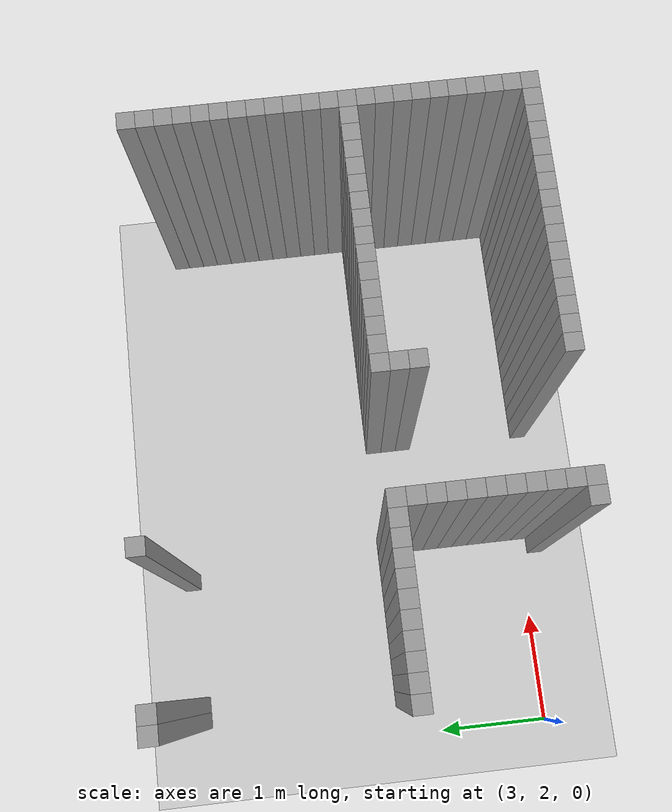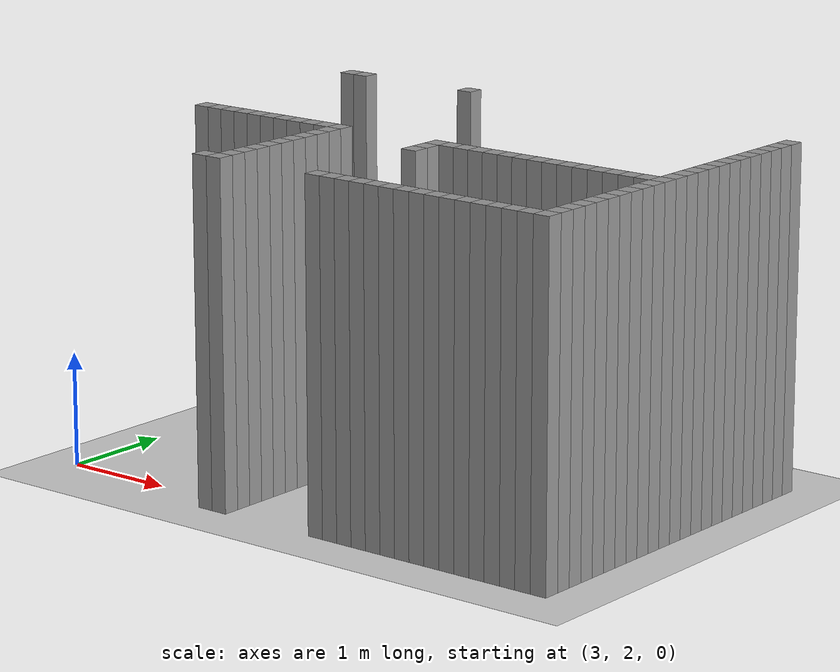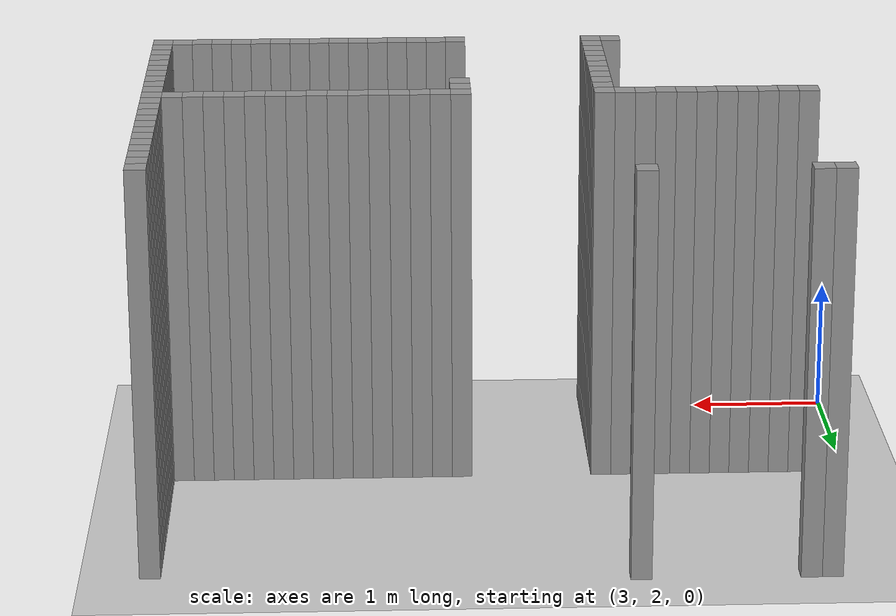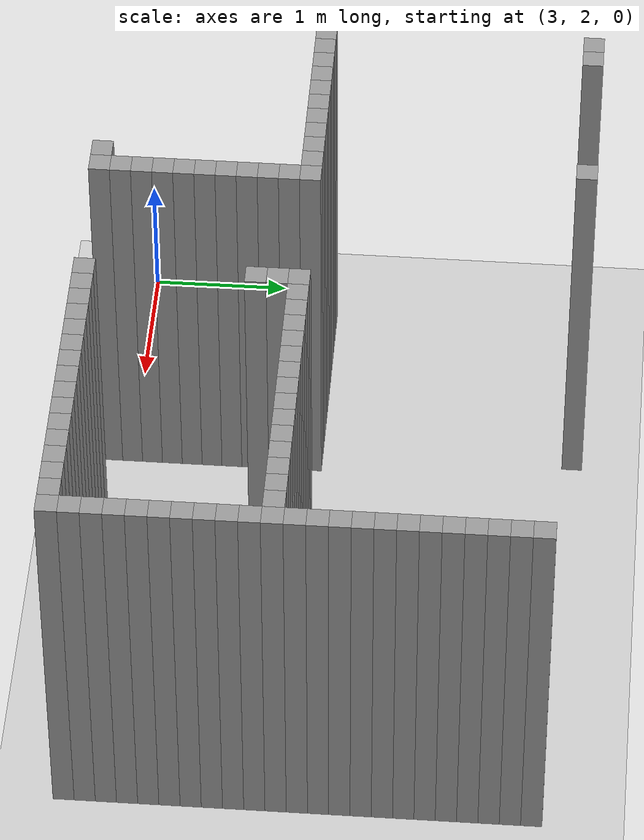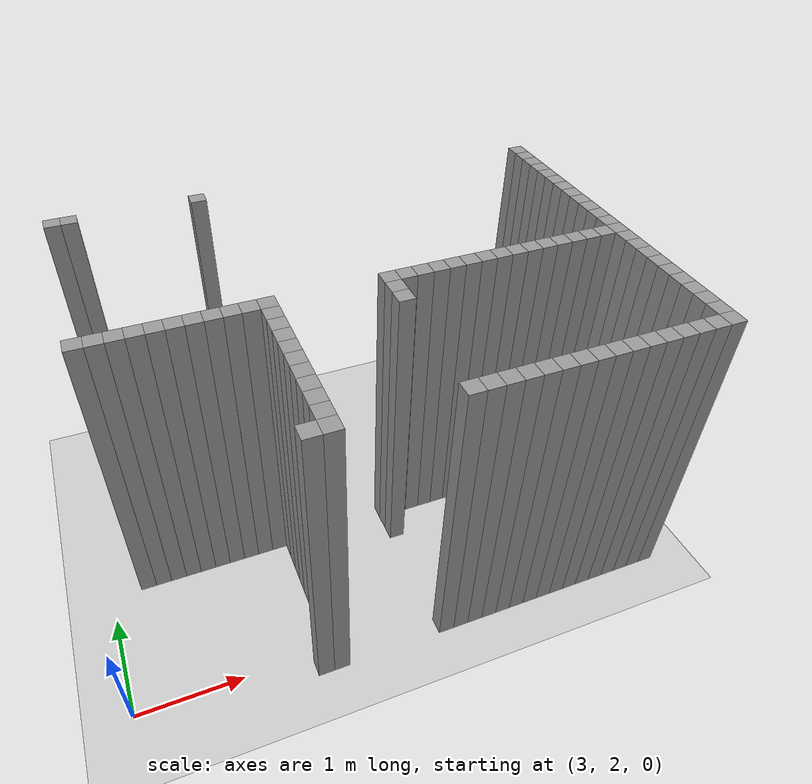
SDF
<sdf version="1.7">
 <world name="default">
  <model name="ground_plane">
   <static>1</static>
   <link name="link">
    <collision name="collision">
     <geometry><plane><normal>0 0 1</normal><size>100 100</size></plane></geometry>
     <surface>
      <contact><collide_bitmask>65535</collide_bitmask></contact>
      <friction><ode><mu>100</mu><mu2>50</mu2></ode></friction>
     </surface>
    </collision>
    <visual name="visual">
     <cast_shadows>0</cast_shadows>
     <geometry><plane><normal>0 0 1</normal><size>100 100</size></plane></geometry>
     <material>
      <script><uri>file://media/materials/scripts/gazebo.material</uri><name>Gazebo/Grey</name></script>
     </material>
    </visual>
   </link>
  </model>
  <model name="image45004">
   <pose>-1 -1 0 0 -0 0</pose>
   <link name="Wall_244">
    <collision name="Wall_244_Collision">
     <geometry><box><size>0.15 0.15 3</size></box></geometry>
     <pose>0 0 1.5 0 -0 0</pose>
    </collision>
    <visual name="Wall_244_Visual">
     <pose>0 0 1.5 0 -0 0</pose>
     <geometry><box><size>0.15 0.15 3</size></box></geometry>
     <material>
      <script><uri>file://media/materials/scripts/gazebo.material</uri><name>Gazebo/Grey</name></script>
      <ambient>1 1 1 1</ambient>
     </material>
     <meta><layer>0</layer></meta>
    </visual>
    <pose>4.35 4.35 0 0 -0 0</pose>
   </link>
   <link name="Wall_245">
    <collision name="Wall_245_Collision">
     <geometry><box><size>0.15 0.15 3</size></box></geometry>
     <pose>0 0 1.5 0 -0 0</pose>
    </collision>
    <visual name="Wall_245_Visual">
     <pose>0 0 1.5 0 -0 0</pose>
     <geometry><box><size>0.15 0.15 3</size></box></geometry>
     <material>
      <script><uri>file://media/materials/scripts/gazebo.material</uri><name>Gazebo/Grey</name></script>
      <ambient>1 1 1 1</ambient>
     </material>
     <meta><layer>0</layer></meta>
    </visual>
    <pose>4.35 6.3 0 0 -0 0</pose>
   </link>
   <link name="Wall_248">
    <collision name="Wall_248_Collision">
     <geometry><box><size>0.15 0.15 3</size></box></geometry>
     <pose>0 0 1.5 0 -0 0</pose>
    </collision>
    <visual name="Wall_248_Visual">
     <pose>0 0 1.5 0 -0 0</pose>
     <geometry><box><size>0.15 0.15 3</size></box></geometry>
     <material>
      <script><uri>file://media/materials/scripts/gazebo.material</uri><name>Gazebo/Grey</name></script>
      <ambient>1 1 1 1</ambient>
     </material>
     <meta><layer>0</layer></meta>
    </visual>
    <pose>4.5 4.35 0 0 -0 0</pose>
   </link>
   <link name="Wall_249">
    <collision name="Wall_249_Collision">
     <geometry><box><size>0.15 0.15 3</size></box></geometry>
     <pose>0 0 1.5 0 -0 0</pose>
    </collision>
    <visual name="Wall_249_Visual">
     <pose>0 0 1.5 0 -0 0</pose>
     <geometry><box><size>0.15 0.15 3</size></box></geometry>
     <material>
      <script><uri>file://media/materials/scripts/gazebo.material</uri><name>Gazebo/Grey</name></script>
      <ambient>1 1 1 1</ambient>
     </material>
     <meta><layer>0</layer></meta>
    </visual>
    <pose>4.5 6.3 0 0 -0 0</pose>
   </link>
   <link name="Wall_252">
    <collision name="Wall_252_Collision">
     <geometry><box><size>0.15 0.15 3</size></box></geometry>
     <pose>0 0 1.5 0 -0 0</pose>
    </collision>
    <visual name="Wall_252_Visual">
     <pose>0 0 1.5 0 -0 0</pose>
     <geometry><box><size>0.15 0.15 3</size></box></geometry>
     <material>
      <script><uri>file://media/materials/scripts/gazebo.material</uri><name>Gazebo/Grey</name></script>
      <ambient>1 1 1 1</ambient>
     </material>
     <meta><layer>0</layer></meta>
    </visual>
    <pose>4.6499999999999995 4.35 0 0 -0 0</pose>
   </link>
   <link name="Wall_255">
    <collision name="Wall_255_Collision">
     <geometry><box><size>0.15 0.15 3</size></box></geometry>
     <pose>0 0 1.5 0 -0 0</pose>
    </collision>
    <visual name="Wall_255_Visual">
     <pose>0 0 1.5 0 -0 0</pose>
     <geometry><box><size>0.15 0.15 3</size></box></geometry>
     <material>
      <script><uri>file://media/materials/scripts/gazebo.material</uri><name>Gazebo/Grey</name></script>
      <ambient>1 1 1 1</ambient>
     </material>
     <meta><layer>0</layer></meta>
    </visual>
    <pose>4.8 4.35 0 0 -0 0</pose>
   </link>
   <link name="Wall_258">
    <collision name="Wall_258_Collision">
     <geometry><box><size>0.15 0.15 3</size></box></geometry>
     <pose>0 0 1.5 0 -0 0</pose>
    </collision>
    <visual name="Wall_258_Visual">
     <pose>0 0 1.5 0 -0 0</pose>
     <geometry><box><size>0.15 0.15 3</size></box></geometry>
     <material>
      <script><uri>file://media/materials/scripts/gazebo.material</uri><name>Gazebo/Grey</name></script>
      <ambient>1 1 1 1</ambient>
     </material>
     <meta><layer>0</layer></meta>
    </visual>
    <pose>4.95 4.35 0 0 -0 0</pose>
   </link>
   <link name="Wall_261">
    <collision name="Wall_261_Collision">
     <geometry><box><size>0.15 0.15 3</size></box></geometry>
     <pose>0 0 1.5 0 -0 0</pose>
    </collision>
    <visual name="Wall_261_Visual">
     <pose>0 0 1.5 0 -0 0</pose>
     <geometry><box><size>0.15 0.15 3</size></box></geometry>
     <material>
      <script><uri>file://media/materials/scripts/gazebo.material</uri><name>Gazebo/Grey</name></script>
      <ambient>1 1 1 1</ambient>
     </material>
     <meta><layer>0</layer></meta>
    </visual>
    <pose>5.1 4.35 0 0 -0 0</pose>
   </link>
   <link name="Wall_264">
    <collision name="Wall_264_Collision">
     <geometry><box><size>0.15 0.15 3</size></box></geometry>
     <pose>0 0 1.5 0 -0 0</pose>
    </collision>
    <visual name="Wall_264_Visual">
     <pose>0 0 1.5 0 -0 0</pose>
     <geometry><box><size>0.15 0.15 3</size></box></geometry>
     <material>
      <script><uri>file://media/materials/scripts/gazebo.material</uri><name>Gazebo/Grey</name></script>
      <ambient>1 1 1 1</ambient>
     </material>
     <meta><layer>0</layer></meta>
    </visual>
    <pose>5.25 4.35 0 0 -0 0</pose>
   </link>
   <link name="Wall_267">
    <collision name="Wall_267_Collision">
     <geometry><box><size>0.15 0.15 3</size></box></geometry>
     <pose>0 0 1.5 0 -0 0</pose>
    </collision>
    <visual name="Wall_267_Visual">
     <pose>0 0 1.5 0 -0 0</pose>
     <geometry><box><size>0.15 0.15 3</size></box></geometry>
     <material>
      <script><uri>file://media/materials/scripts/gazebo.material</uri><name>Gazebo/Grey</name></script>
      <ambient>1 1 1 1</ambient>
     </material>
     <meta><layer>0</layer></meta>
    </visual>
    <pose>5.3999999999999995 4.35 0 0 -0 0</pose>
   </link>
   <link name="Wall_272">
    <collision name="Wall_272_Collision">
     <geometry><box><size>0.15 0.15 3</size></box></geometry>
     <pose>0 0 1.5 0 -0 0</pose>
    </collision>
    <visual name="Wall_272_Visual">
     <pose>0 0 1.5 0 -0 0</pose>
     <geometry><box><size>0.15 0.15 3</size></box></geometry>
     <material>
      <script><uri>file://media/materials/scripts/gazebo.material</uri><name>Gazebo/Grey</name></script>
      <ambient>1 1 1 1</ambient>
     </material>
     <meta><layer>0</layer></meta>
    </visual>
    <pose>5.55 4.35 0 0 -0 0</pose>
   </link>
   <link name="Wall_276">
    <collision name="Wall_276_Collision">
     <geometry><box><size>0.15 0.15 3</size></box></geometry>
     <pose>0 0 1.5 0 -0 0</pose>
    </collision>
    <visual name="Wall_276_Visual">
     <pose>0 0 1.5 0 -0 0</pose>
     <geometry><box><size>0.15 0.15 3</size></box></geometry>
     <material>
      <script><uri>file://media/materials/scripts/gazebo.material</uri><name>Gazebo/Grey</name></script>
      <ambient>1 1 1 1</ambient>
     </material>
     <meta><layer>0</layer></meta>
    </visual>
    <pose>5.7 2.85 0 0 -0 0</pose>
   </link>
   <link name="Wall_277">
    <collision name="Wall_277_Collision">
     <geometry><box><size>0.15 0.15 3</size></box></geometry>
     <pose>0 0 1.5 0 -0 0</pose>
    </collision>
    <visual name="Wall_277_Visual">
     <pose>0 0 1.5 0 -0 0</pose>
     <geometry><box><size>0.15 0.15 3</size></box></geometry>
     <material>
      <script><uri>file://media/materials/scripts/gazebo.material</uri><name>Gazebo/Grey</name></script>
      <ambient>1 1 1 1</ambient>
     </material>
     <meta><layer>0</layer></meta>
    </visual>
    <pose>5.7 4.35 0 0 -0 0</pose>
   </link>
   <link name="Wall_278">
    <collision name="Wall_278_Collision">
     <geometry><box><size>0.15 0.15 3</size></box></geometry>
     <pose>0 0 1.5 0 -0 0</pose>
    </collision>
    <visual name="Wall_278_Visual">
     <pose>0 0 1.5 0 -0 0</pose>
     <geometry><box><size>0.15 0.15 3</size></box></geometry>
     <material>
      <script><uri>file://media/materials/scripts/gazebo.material</uri><name>Gazebo/Grey</name></script>
      <ambient>1 1 1 1</ambient>
     </material>
     <meta><layer>0</layer></meta>
    </visual>
    <pose>5.7 6.3 0 0 -0 0</pose>
   </link>
   <link name="Wall_282">
    <collision name="Wall_282_Collision">
     <geometry><box><size>0.15 0.15 3</size></box></geometry>
     <pose>0 0 1.5 0 -0 0</pose>
    </collision>
    <visual name="Wall_282_Visual">
     <pose>0 0 1.5 0 -0 0</pose>
     <geometry><box><size>0.15 0.15 3</size></box></geometry>
     <material>
      <script><uri>file://media/materials/scripts/gazebo.material</uri><name>Gazebo/Grey</name></script>
      <ambient>1 1 1 1</ambient>
     </material>
     <meta><layer>0</layer></meta>
    </visual>
    <pose>5.85 2.85 0 0 -0 0</pose>
   </link>
   <link name="Wall_283">
    <collision name="Wall_283_Collision">
     <geometry><box><size>0.15 0.15 3</size></box></geometry>
     <pose>0 0 1.5 0 -0 0</pose>
    </collision>
    <visual name="Wall_283_Visual">
     <pose>0 0 1.5 0 -0 0</pose>
     <geometry><box><size>0.15 0.15 3</size></box></geometry>
     <material>
      <script><uri>file://media/materials/scripts/gazebo.material</uri><name>Gazebo/Grey</name></script>
      <ambient>1 1 1 1</ambient>
     </material>
     <meta><layer>0</layer></meta>
    </visual>
    <pose>5.85 3.0 0 0 -0 0</pose>
   </link>
   <link name="Wall_284">
    <collision name="Wall_284_Collision">
     <geometry><box><size>0.15 0.15 3</size></box></geometry>
     <pose>0 0 1.5 0 -0 0</pose>
    </collision>
    <visual name="Wall_284_Visual">
     <pose>0 0 1.5 0 -0 0</pose>
     <geometry><box><size>0.15 0.15 3</size></box></geometry>
     <material>
      <script><uri>file://media/materials/scripts/gazebo.material</uri><name>Gazebo/Grey</name></script>
      <ambient>1 1 1 1</ambient>
     </material>
     <meta><layer>0</layer></meta>
    </visual>
    <pose>5.85 3.15 0 0 -0 0</pose>
   </link>
   <link name="Wall_285">
    <collision name="Wall_285_Collision">
     <geometry><box><size>0.15 0.15 3</size></box></geometry>
     <pose>0 0 1.5 0 -0 0</pose>
    </collision>
    <visual name="Wall_285_Visual">
     <pose>0 0 1.5 0 -0 0</pose>
     <geometry><box><size>0.15 0.15 3</size></box></geometry>
     <material>
      <script><uri>file://media/materials/scripts/gazebo.material</uri><name>Gazebo/Grey</name></script>
      <ambient>1 1 1 1</ambient>
     </material>
     <meta><layer>0</layer></meta>
    </visual>
    <pose>5.85 3.3 0 0 -0 0</pose>
   </link>
   <link name="Wall_286">
    <collision name="Wall_286_Collision">
     <geometry><box><size>0.15 0.15 3</size></box></geometry>
     <pose>0 0 1.5 0 -0 0</pose>
    </collision>
    <visual name="Wall_286_Visual">
     <pose>0 0 1.5 0 -0 0</pose>
     <geometry><box><size>0.15 0.15 3</size></box></geometry>
     <material>
      <script><uri>file://media/materials/scripts/gazebo.material</uri><name>Gazebo/Grey</name></script>
      <ambient>1 1 1 1</ambient>
     </material>
     <meta><layer>0</layer></meta>
    </visual>
    <pose>5.85 3.4499999999999997 0 0 -0 0</pose>
   </link>
   <link name="Wall_287">
    <collision name="Wall_287_Collision">
     <geometry><box><size>0.15 0.15 3</size></box></geometry>
     <pose>0 0 1.5 0 -0 0</pose>
    </collision>
    <visual name="Wall_287_Visual">
     <pose>0 0 1.5 0 -0 0</pose>
     <geometry><box><size>0.15 0.15 3</size></box></geometry>
     <material>
      <script><uri>file://media/materials/scripts/gazebo.material</uri><name>Gazebo/Grey</name></script>
      <ambient>1 1 1 1</ambient>
     </material>
     <meta><layer>0</layer></meta>
    </visual>
    <pose>5.85 3.5999999999999996 0 0 -0 0</pose>
   </link>
   <link name="Wall_288">
    <collision name="Wall_288_Collision">
     <geometry><box><size>0.15 0.15 3</size></box></geometry>
     <pose>0 0 1.5 0 -0 0</pose>
    </collision>
    <visual name="Wall_288_Visual">
     <pose>0 0 1.5 0 -0 0</pose>
     <geometry><box><size>0.15 0.15 3</size></box></geometry>
     <material>
      <script><uri>file://media/materials/scripts/gazebo.material</uri><name>Gazebo/Grey</name></script>
      <ambient>1 1 1 1</ambient>
     </material>
     <meta><layer>0</layer></meta>
    </visual>
    <pose>5.85 3.75 0 0 -0 0</pose>
   </link>
   <link name="Wall_289">
    <collision name="Wall_289_Collision">
     <geometry><box><size>0.15 0.15 3</size></box></geometry>
     <pose>0 0 1.5 0 -0 0</pose>
    </collision>
    <visual name="Wall_289_Visual">
     <pose>0 0 1.5 0 -0 0</pose>
     <geometry><box><size>0.15 0.15 3</size></box></geometry>
     <material>
      <script><uri>file://media/materials/scripts/gazebo.material</uri><name>Gazebo/Grey</name></script>
      <ambient>1 1 1 1</ambient>
     </material>
     <meta><layer>0</layer></meta>
    </visual>
    <pose>5.85 3.9 0 0 -0 0</pose>
   </link>
   <link name="Wall_290">
    <collision name="Wall_290_Collision">
     <geometry><box><size>0.15 0.15 3</size></box></geometry>
     <pose>0 0 1.5 0 -0 0</pose>
    </collision>
    <visual name="Wall_290_Visual">
     <pose>0 0 1.5 0 -0 0</pose>
     <geometry><box><size>0.15 0.15 3</size></box></geometry>
     <material>
      <script><uri>file://media/materials/scripts/gazebo.material</uri><name>Gazebo/Grey</name></script>
      <ambient>1 1 1 1</ambient>
     </material>
     <meta><layer>0</layer></meta>
    </visual>
    <pose>5.85 4.05 0 0 -0 0</pose>
   </link>
   <link name="Wall_291">
    <collision name="Wall_291_Collision">
     <geometry><box><size>0.15 0.15 3</size></box></geometry>
     <pose>0 0 1.5 0 -0 0</pose>
    </collision>
    <visual name="Wall_291_Visual">
     <pose>0 0 1.5 0 -0 0</pose>
     <geometry><box><size>0.15 0.15 3</size></box></geometry>
     <material>
      <script><uri>file://media/materials/scripts/gazebo.material</uri><name>Gazebo/Grey</name></script>
      <ambient>1 1 1 1</ambient>
     </material>
     <meta><layer>0</layer></meta>
    </visual>
    <pose>5.85 4.2 0 0 -0 0</pose>
   </link>
   <link name="Wall_292">
    <collision name="Wall_292_Collision">
     <geometry><box><size>0.15 0.15 3</size></box></geometry>
     <pose>0 0 1.5 0 -0 0</pose>
    </collision>
    <visual name="Wall_292_Visual">
     <pose>0 0 1.5 0 -0 0</pose>
     <geometry><box><size>0.15 0.15 3</size></box></geometry>
     <material>
      <script><uri>file://media/materials/scripts/gazebo.material</uri><name>Gazebo/Grey</name></script>
      <ambient>1 1 1 1</ambient>
     </material>
     <meta><layer>0</layer></meta>
    </visual>
    <pose>5.85 4.35 0 0 -0 0</pose>
   </link>
   <link name="Wall_347">
    <collision name="Wall_347_Collision">
     <geometry><box><size>0.15 0.15 3</size></box></geometry>
     <pose>0 0 1.5 0 -0 0</pose>
    </collision>
    <visual name="Wall_347_Visual">
     <pose>0 0 1.5 0 -0 0</pose>
     <geometry><box><size>0.15 0.15 3</size></box></geometry>
     <material>
      <script><uri>file://media/materials/scripts/gazebo.material</uri><name>Gazebo/Grey</name></script>
      <ambient>1 1 1 1</ambient>
     </material>
     <meta><layer>0</layer></meta>
    </visual>
    <pose>6.8999999999999995 2.85 0 0 -0 0</pose>
   </link>
   <link name="Wall_348">
    <collision name="Wall_348_Collision">
     <geometry><box><size>0.15 0.15 3</size></box></geometry>
     <pose>0 0 1.5 0 -0 0</pose>
    </collision>
    <visual name="Wall_348_Visual">
     <pose>0 0 1.5 0 -0 0</pose>
     <geometry><box><size>0.15 0.15 3</size></box></geometry>
     <material>
      <script><uri>file://media/materials/scripts/gazebo.material</uri><name>Gazebo/Grey</name></script>
      <ambient>1 1 1 1</ambient>
     </material>
     <meta><layer>0</layer></meta>
    </visual>
    <pose>6.8999999999999995 4.05 0 0 -0 0</pose>
   </link>
   <link name="Wall_349">
    <collision name="Wall_349_Collision">
     <geometry><box><size>0.15 0.15 3</size></box></geometry>
     <pose>0 0 1.5 0 -0 0</pose>
    </collision>
    <visual name="Wall_349_Visual">
     <pose>0 0 1.5 0 -0 0</pose>
     <geometry><box><size>0.15 0.15 3</size></box></geometry>
     <material>
      <script><uri>file://media/materials/scripts/gazebo.material</uri><name>Gazebo/Grey</name></script>
      <ambient>1 1 1 1</ambient>
     </material>
     <meta><layer>0</layer></meta>
    </visual>
    <pose>6.8999999999999995 4.2 0 0 -0 0</pose>
   </link>
   <link name="Wall_350">
    <collision name="Wall_350_Collision">
     <geometry><box><size>0.15 0.15 3</size></box></geometry>
     <pose>0 0 1.5 0 -0 0</pose>
    </collision>
    <visual name="Wall_350_Visual">
     <pose>0 0 1.5 0 -0 0</pose>
     <geometry><box><size>0.15 0.15 3</size></box></geometry>
     <material>
      <script><uri>file://media/materials/scripts/gazebo.material</uri><name>Gazebo/Grey</name></script>
      <ambient>1 1 1 1</ambient>
     </material>
     <meta><layer>0</layer></meta>
    </visual>
    <pose>6.8999999999999995 4.35 0 0 -0 0</pose>
   </link>
   <link name="Wall_354">
    <collision name="Wall_354_Collision">
     <geometry><box><size>0.15 0.15 3</size></box></geometry>
     <pose>0 0 1.5 0 -0 0</pose>
    </collision>
    <visual name="Wall_354_Visual">
     <pose>0 0 1.5 0 -0 0</pose>
     <geometry><box><size>0.15 0.15 3</size></box></geometry>
     <material>
      <script><uri>file://media/materials/scripts/gazebo.material</uri><name>Gazebo/Grey</name></script>
      <ambient>1 1 1 1</ambient>
     </material>
     <meta><layer>0</layer></meta>
    </visual>
    <pose>7.05 2.85 0 0 -0 0</pose>
   </link>
   <link name="Wall_355">
    <collision name="Wall_355_Collision">
     <geometry><box><size>0.15 0.15 3</size></box></geometry>
     <pose>0 0 1.5 0 -0 0</pose>
    </collision>
    <visual name="Wall_355_Visual">
     <pose>0 0 1.5 0 -0 0</pose>
     <geometry><box><size>0.15 0.15 3</size></box></geometry>
     <material>
      <script><uri>file://media/materials/scripts/gazebo.material</uri><name>Gazebo/Grey</name></script>
      <ambient>1 1 1 1</ambient>
     </material>
     <meta><layer>0</layer></meta>
    </visual>
    <pose>7.05 4.35 0 0 -0 0</pose>
   </link>
   <link name="Wall_359">
    <collision name="Wall_359_Collision">
     <geometry><box><size>0.15 0.15 3</size></box></geometry>
     <pose>0 0 1.5 0 -0 0</pose>
    </collision>
    <visual name="Wall_359_Visual">
     <pose>0 0 1.5 0 -0 0</pose>
     <geometry><box><size>0.15 0.15 3</size></box></geometry>
     <material>
      <script><uri>file://media/materials/scripts/gazebo.material</uri><name>Gazebo/Grey</name></script>
      <ambient>1 1 1 1</ambient>
     </material>
     <meta><layer>0</layer></meta>
    </visual>
    <pose>7.199999999999999 2.85 0 0 -0 0</pose>
   </link>
   <link name="Wall_360">
    <collision name="Wall_360_Collision">
     <geometry><box><size>0.15 0.15 3</size></box></geometry>
     <pose>0 0 1.5 0 -0 0</pose>
    </collision>
    <visual name="Wall_360_Visual">
     <pose>0 0 1.5 0 -0 0</pose>
     <geometry><box><size>0.15 0.15 3</size></box></geometry>
     <material>
      <script><uri>file://media/materials/scripts/gazebo.material</uri><name>Gazebo/Grey</name></script>
      <ambient>1 1 1 1</ambient>
     </material>
     <meta><layer>0</layer></meta>
    </visual>
    <pose>7.199999999999999 4.35 0 0 -0 0</pose>
   </link>
   <link name="Wall_364">
    <collision name="Wall_364_Collision">
     <geometry><box><size>0.15 0.15 3</size></box></geometry>
     <pose>0 0 1.5 0 -0 0</pose>
    </collision>
    <visual name="Wall_364_Visual">
     <pose>0 0 1.5 0 -0 0</pose>
     <geometry><box><size>0.15 0.15 3</size></box></geometry>
     <material>
      <script><uri>file://media/materials/scripts/gazebo.material</uri><name>Gazebo/Grey</name></script>
      <ambient>1 1 1 1</ambient>
     </material>
     <meta><layer>0</layer></meta>
    </visual>
    <pose>7.35 2.85 0 0 -0 0</pose>
   </link>
   <link name="Wall_365">
    <collision name="Wall_365_Collision">
     <geometry><box><size>0.15 0.15 3</size></box></geometry>
     <pose>0 0 1.5 0 -0 0</pose>
    </collision>
    <visual name="Wall_365_Visual">
     <pose>0 0 1.5 0 -0 0</pose>
     <geometry><box><size>0.15 0.15 3</size></box></geometry>
     <material>
      <script><uri>file://media/materials/scripts/gazebo.material</uri><name>Gazebo/Grey</name></script>
      <ambient>1 1 1 1</ambient>
     </material>
     <meta><layer>0</layer></meta>
    </visual>
    <pose>7.35 4.35 0 0 -0 0</pose>
   </link>
   <link name="Wall_369">
    <collision name="Wall_369_Collision">
     <geometry><box><size>0.15 0.15 3</size></box></geometry>
     <pose>0 0 1.5 0 -0 0</pose>
    </collision>
    <visual name="Wall_369_Visual">
     <pose>0 0 1.5 0 -0 0</pose>
     <geometry><box><size>0.15 0.15 3</size></box></geometry>
     <material>
      <script><uri>file://media/materials/scripts/gazebo.material</uri><name>Gazebo/Grey</name></script>
      <ambient>1 1 1 1</ambient>
     </material>
     <meta><layer>0</layer></meta>
    </visual>
    <pose>7.5 2.85 0 0 -0 0</pose>
   </link>
   <link name="Wall_370">
    <collision name="Wall_370_Collision">
     <geometry><box><size>0.15 0.15 3</size></box></geometry>
     <pose>0 0 1.5 0 -0 0</pose>
    </collision>
    <visual name="Wall_370_Visual">
     <pose>0 0 1.5 0 -0 0</pose>
     <geometry><box><size>0.15 0.15 3</size></box></geometry>
     <material>
      <script><uri>file://media/materials/scripts/gazebo.material</uri><name>Gazebo/Grey</name></script>
      <ambient>1 1 1 1</ambient>
     </material>
     <meta><layer>0</layer></meta>
    </visual>
    <pose>7.5 4.35 0 0 -0 0</pose>
   </link>
   <link name="Wall_374">
    <collision name="Wall_374_Collision">
     <geometry><box><size>0.15 0.15 3</size></box></geometry>
     <pose>0 0 1.5 0 -0 0</pose>
    </collision>
    <visual name="Wall_374_Visual">
     <pose>0 0 1.5 0 -0 0</pose>
     <geometry><box><size>0.15 0.15 3</size></box></geometry>
     <material>
      <script><uri>file://media/materials/scripts/gazebo.material</uri><name>Gazebo/Grey</name></script>
      <ambient>1 1 1 1</ambient>
     </material>
     <meta><layer>0</layer></meta>
    </visual>
    <pose>7.6499999999999995 2.85 0 0 -0 0</pose>
   </link>
   <link name="Wall_375">
    <collision name="Wall_375_Collision">
     <geometry><box><size>0.15 0.15 3</size></box></geometry>
     <pose>0 0 1.5 0 -0 0</pose>
    </collision>
    <visual name="Wall_375_Visual">
     <pose>0 0 1.5 0 -0 0</pose>
     <geometry><box><size>0.15 0.15 3</size></box></geometry>
     <material>
      <script><uri>file://media/materials/scripts/gazebo.material</uri><name>Gazebo/Grey</name></script>
      <ambient>1 1 1 1</ambient>
     </material>
     <meta><layer>0</layer></meta>
    </visual>
    <pose>7.6499999999999995 4.35 0 0 -0 0</pose>
   </link>
   <link name="Wall_378">
    <collision name="Wall_378_Collision">
     <geometry><box><size>0.15 0.15 3</size></box></geometry>
     <pose>0 0 1.5 0 -0 0</pose>
    </collision>
    <visual name="Wall_378_Visual">
     <pose>0 0 1.5 0 -0 0</pose>
     <geometry><box><size>0.15 0.15 3</size></box></geometry>
     <material>
      <script><uri>file://media/materials/scripts/gazebo.material</uri><name>Gazebo/Grey</name></script>
      <ambient>1 1 1 1</ambient>
     </material>
     <meta><layer>0</layer></meta>
    </visual>
    <pose>7.8 2.85 0 0 -0 0</pose>
   </link>
   <link name="Wall_379">
    <collision name="Wall_379_Collision">
     <geometry><box><size>0.15 0.15 3</size></box></geometry>
     <pose>0 0 1.5 0 -0 0</pose>
    </collision>
    <visual name="Wall_379_Visual">
     <pose>0 0 1.5 0 -0 0</pose>
     <geometry><box><size>0.15 0.15 3</size></box></geometry>
     <material>
      <script><uri>file://media/materials/scripts/gazebo.material</uri><name>Gazebo/Grey</name></script>
      <ambient>1 1 1 1</ambient>
     </material>
     <meta><layer>0</layer></meta>
    </visual>
    <pose>7.8 4.35 0 0 -0 0</pose>
   </link>
   <link name="Wall_382">
    <collision name="Wall_382_Collision">
     <geometry><box><size>0.15 0.15 3</size></box></geometry>
     <pose>0 0 1.5 0 -0 0</pose>
    </collision>
    <visual name="Wall_382_Visual">
     <pose>0 0 1.5 0 -0 0</pose>
     <geometry><box><size>0.15 0.15 3</size></box></geometry>
     <material>
      <script><uri>file://media/materials/scripts/gazebo.material</uri><name>Gazebo/Grey</name></script>
      <ambient>1 1 1 1</ambient>
     </material>
     <meta><layer>0</layer></meta>
    </visual>
    <pose>7.949999999999999 2.85 0 0 -0 0</pose>
   </link>
   <link name="Wall_383">
    <collision name="Wall_383_Collision">
     <geometry><box><size>0.15 0.15 3</size></box></geometry>
     <pose>0 0 1.5 0 -0 0</pose>
    </collision>
    <visual name="Wall_383_Visual">
     <pose>0 0 1.5 0 -0 0</pose>
     <geometry><box><size>0.15 0.15 3</size></box></geometry>
     <material>
      <script><uri>file://media/materials/scripts/gazebo.material</uri><name>Gazebo/Grey</name></script>
      <ambient>1 1 1 1</ambient>
     </material>
     <meta><layer>0</layer></meta>
    </visual>
    <pose>7.949999999999999 4.35 0 0 -0 0</pose>
   </link>
   <link name="Wall_386">
    <collision name="Wall_386_Collision">
     <geometry><box><size>0.15 0.15 3</size></box></geometry>
     <pose>0 0 1.5 0 -0 0</pose>
    </collision>
    <visual name="Wall_386_Visual">
     <pose>0 0 1.5 0 -0 0</pose>
     <geometry><box><size>0.15 0.15 3</size></box></geometry>
     <material>
      <script><uri>file://media/materials/scripts/gazebo.material</uri><name>Gazebo/Grey</name></script>
      <ambient>1 1 1 1</ambient>
     </material>
     <meta><layer>0</layer></meta>
    </visual>
    <pose>8.1 2.85 0 0 -0 0</pose>
   </link>
   <link name="Wall_387">
    <collision name="Wall_387_Collision">
     <geometry><box><size>0.15 0.15 3</size></box></geometry>
     <pose>0 0 1.5 0 -0 0</pose>
    </collision>
    <visual name="Wall_387_Visual">
     <pose>0 0 1.5 0 -0 0</pose>
     <geometry><box><size>0.15 0.15 3</size></box></geometry>
     <material>
      <script><uri>file://media/materials/scripts/gazebo.material</uri><name>Gazebo/Grey</name></script>
      <ambient>1 1 1 1</ambient>
     </material>
     <meta><layer>0</layer></meta>
    </visual>
    <pose>8.1 4.35 0 0 -0 0</pose>
   </link>
   <link name="Wall_391">
    <collision name="Wall_391_Collision">
     <geometry><box><size>0.15 0.15 3</size></box></geometry>
     <pose>0 0 1.5 0 -0 0</pose>
    </collision>
    <visual name="Wall_391_Visual">
     <pose>0 0 1.5 0 -0 0</pose>
     <geometry><box><size>0.15 0.15 3</size></box></geometry>
     <material>
      <script><uri>file://media/materials/scripts/gazebo.material</uri><name>Gazebo/Grey</name></script>
      <ambient>1 1 1 1</ambient>
     </material>
     <meta><layer>0</layer></meta>
    </visual>
    <pose>8.25 2.85 0 0 -0 0</pose>
   </link>
   <link name="Wall_392">
    <collision name="Wall_392_Collision">
     <geometry><box><size>0.15 0.15 3</size></box></geometry>
     <pose>0 0 1.5 0 -0 0</pose>
    </collision>
    <visual name="Wall_392_Visual">
     <pose>0 0 1.5 0 -0 0</pose>
     <geometry><box><size>0.15 0.15 3</size></box></geometry>
     <material>
      <script><uri>file://media/materials/scripts/gazebo.material</uri><name>Gazebo/Grey</name></script>
      <ambient>1 1 1 1</ambient>
     </material>
     <meta><layer>0</layer></meta>
    </visual>
    <pose>8.25 4.35 0 0 -0 0</pose>
   </link>
   <link name="Wall_396">
    <collision name="Wall_396_Collision">
     <geometry><box><size>0.15 0.15 3</size></box></geometry>
     <pose>0 0 1.5 0 -0 0</pose>
    </collision>
    <visual name="Wall_396_Visual">
     <pose>0 0 1.5 0 -0 0</pose>
     <geometry><box><size>0.15 0.15 3</size></box></geometry>
     <material>
      <script><uri>file://media/materials/scripts/gazebo.material</uri><name>Gazebo/Grey</name></script>
      <ambient>1 1 1 1</ambient>
     </material>
     <meta><layer>0</layer></meta>
    </visual>
    <pose>8.4 2.85 0 0 -0 0</pose>
   </link>
   <link name="Wall_397">
    <collision name="Wall_397_Collision">
     <geometry><box><size>0.15 0.15 3</size></box></geometry>
     <pose>0 0 1.5 0 -0 0</pose>
    </collision>
    <visual name="Wall_397_Visual">
     <pose>0 0 1.5 0 -0 0</pose>
     <geometry><box><size>0.15 0.15 3</size></box></geometry>
     <material>
      <script><uri>file://media/materials/scripts/gazebo.material</uri><name>Gazebo/Grey</name></script>
      <ambient>1 1 1 1</ambient>
     </material>
     <meta><layer>0</layer></meta>
    </visual>
    <pose>8.4 4.35 0 0 -0 0</pose>
   </link>
   <link name="Wall_401">
    <collision name="Wall_401_Collision">
     <geometry><box><size>0.15 0.15 3</size></box></geometry>
     <pose>0 0 1.5 0 -0 0</pose>
    </collision>
    <visual name="Wall_401_Visual">
     <pose>0 0 1.5 0 -0 0</pose>
     <geometry><box><size>0.15 0.15 3</size></box></geometry>
     <material>
      <script><uri>file://media/materials/scripts/gazebo.material</uri><name>Gazebo/Grey</name></script>
      <ambient>1 1 1 1</ambient>
     </material>
     <meta><layer>0</layer></meta>
    </visual>
    <pose>8.549999999999999 2.85 0 0 -0 0</pose>
   </link>
   <link name="Wall_402">
    <collision name="Wall_402_Collision">
     <geometry><box><size>0.15 0.15 3</size></box></geometry>
     <pose>0 0 1.5 0 -0 0</pose>
    </collision>
    <visual name="Wall_402_Visual">
     <pose>0 0 1.5 0 -0 0</pose>
     <geometry><box><size>0.15 0.15 3</size></box></geometry>
     <material>
      <script><uri>file://media/materials/scripts/gazebo.material</uri><name>Gazebo/Grey</name></script>
      <ambient>1 1 1 1</ambient>
     </material>
     <meta><layer>0</layer></meta>
    </visual>
    <pose>8.549999999999999 4.35 0 0 -0 0</pose>
   </link>
   <link name="Wall_407">
    <collision name="Wall_407_Collision">
     <geometry><box><size>0.15 0.15 3</size></box></geometry>
     <pose>0 0 1.5 0 -0 0</pose>
    </collision>
    <visual name="Wall_407_Visual">
     <pose>0 0 1.5 0 -0 0</pose>
     <geometry><box><size>0.15 0.15 3</size></box></geometry>
     <material>
      <script><uri>file://media/materials/scripts/gazebo.material</uri><name>Gazebo/Grey</name></script>
      <ambient>1 1 1 1</ambient>
     </material>
     <meta><layer>0</layer></meta>
    </visual>
    <pose>8.7 2.85 0 0 -0 0</pose>
   </link>
   <link name="Wall_408">
    <collision name="Wall_408_Collision">
     <geometry><box><size>0.15 0.15 3</size></box></geometry>
     <pose>0 0 1.5 0 -0 0</pose>
    </collision>
    <visual name="Wall_408_Visual">
     <pose>0 0 1.5 0 -0 0</pose>
     <geometry><box><size>0.15 0.15 3</size></box></geometry>
     <material>
      <script><uri>file://media/materials/scripts/gazebo.material</uri><name>Gazebo/Grey</name></script>
      <ambient>1 1 1 1</ambient>
     </material>
     <meta><layer>0</layer></meta>
    </visual>
    <pose>8.7 4.35 0 0 -0 0</pose>
   </link>
   <link name="Wall_413">
    <collision name="Wall_413_Collision">
     <geometry><box><size>0.15 0.15 3</size></box></geometry>
     <pose>0 0 1.5 0 -0 0</pose>
    </collision>
    <visual name="Wall_413_Visual">
     <pose>0 0 1.5 0 -0 0</pose>
     <geometry><box><size>0.15 0.15 3</size></box></geometry>
     <material>
      <script><uri>file://media/materials/scripts/gazebo.material</uri><name>Gazebo/Grey</name></script>
      <ambient>1 1 1 1</ambient>
     </material>
     <meta><layer>0</layer></meta>
    </visual>
    <pose>8.85 2.85 0 0 -0 0</pose>
   </link>
   <link name="Wall_414">
    <collision name="Wall_414_Collision">
     <geometry><box><size>0.15 0.15 3</size></box></geometry>
     <pose>0 0 1.5 0 -0 0</pose>
    </collision>
    <visual name="Wall_414_Visual">
     <pose>0 0 1.5 0 -0 0</pose>
     <geometry><box><size>0.15 0.15 3</size></box></geometry>
     <material>
      <script><uri>file://media/materials/scripts/gazebo.material</uri><name>Gazebo/Grey</name></script>
      <ambient>1 1 1 1</ambient>
     </material>
     <meta><layer>0</layer></meta>
    </visual>
    <pose>8.85 4.35 0 0 -0 0</pose>
   </link>
   <link name="Wall_419">
    <collision name="Wall_419_Collision">
     <geometry><box><size>0.15 0.15 3</size></box></geometry>
     <pose>0 0 1.5 0 -0 0</pose>
    </collision>
    <visual name="Wall_419_Visual">
     <pose>0 0 1.5 0 -0 0</pose>
     <geometry><box><size>0.15 0.15 3</size></box></geometry>
     <material>
      <script><uri>file://media/materials/scripts/gazebo.material</uri><name>Gazebo/Grey</name></script>
      <ambient>1 1 1 1</ambient>
     </material>
     <meta><layer>0</layer></meta>
    </visual>
    <pose>9.0 2.85 0 0 -0 0</pose>
   </link>
   <link name="Wall_420">
    <collision name="Wall_420_Collision">
     <geometry><box><size>0.15 0.15 3</size></box></geometry>
     <pose>0 0 1.5 0 -0 0</pose>
    </collision>
    <visual name="Wall_420_Visual">
     <pose>0 0 1.5 0 -0 0</pose>
     <geometry><box><size>0.15 0.15 3</size></box></geometry>
     <material>
      <script><uri>file://media/materials/scripts/gazebo.material</uri><name>Gazebo/Grey</name></script>
      <ambient>1 1 1 1</ambient>
     </material>
     <meta><layer>0</layer></meta>
    </visual>
    <pose>9.0 4.35 0 0 -0 0</pose>
   </link>
   <link name="Wall_442">
    <collision name="Wall_442_Collision">
     <geometry><box><size>0.15 0.15 3</size></box></geometry>
     <pose>0 0 1.5 0 -0 0</pose>
    </collision>
    <visual name="Wall_442_Visual">
     <pose>0 0 1.5 0 -0 0</pose>
     <geometry><box><size>0.15 0.15 3</size></box></geometry>
     <material>
      <script><uri>file://media/materials/scripts/gazebo.material</uri><name>Gazebo/Grey</name></script>
      <ambient>1 1 1 1</ambient>
     </material>
     <meta><layer>0</layer></meta>
    </visual>
    <pose>9.15 2.85 0 0 -0 0</pose>
   </link>
   <link name="Wall_443">
    <collision name="Wall_443_Collision">
     <geometry><box><size>0.15 0.15 3</size></box></geometry>
     <pose>0 0 1.5 0 -0 0</pose>
    </collision>
    <visual name="Wall_443_Visual">
     <pose>0 0 1.5 0 -0 0</pose>
     <geometry><box><size>0.15 0.15 3</size></box></geometry>
     <material>
      <script><uri>file://media/materials/scripts/gazebo.material</uri><name>Gazebo/Grey</name></script>
      <ambient>1 1 1 1</ambient>
     </material>
     <meta><layer>0</layer></meta>
    </visual>
    <pose>9.15 3.0 0 0 -0 0</pose>
   </link>
   <link name="Wall_444">
    <collision name="Wall_444_Collision">
     <geometry><box><size>0.15 0.15 3</size></box></geometry>
     <pose>0 0 1.5 0 -0 0</pose>
    </collision>
    <visual name="Wall_444_Visual">
     <pose>0 0 1.5 0 -0 0</pose>
     <geometry><box><size>0.15 0.15 3</size></box></geometry>
     <material>
      <script><uri>file://media/materials/scripts/gazebo.material</uri><name>Gazebo/Grey</name></script>
      <ambient>1 1 1 1</ambient>
     </material>
     <meta><layer>0</layer></meta>
    </visual>
    <pose>9.15 3.15 0 0 -0 0</pose>
   </link>
   <link name="Wall_445">
    <collision name="Wall_445_Collision">
     <geometry><box><size>0.15 0.15 3</size></box></geometry>
     <pose>0 0 1.5 0 -0 0</pose>
    </collision>
    <visual name="Wall_445_Visual">
     <pose>0 0 1.5 0 -0 0</pose>
     <geometry><box><size>0.15 0.15 3</size></box></geometry>
     <material>
      <script><uri>file://media/materials/scripts/gazebo.material</uri><name>Gazebo/Grey</name></script>
      <ambient>1 1 1 1</ambient>
     </material>
     <meta><layer>0</layer></meta>
    </visual>
    <pose>9.15 3.3 0 0 -0 0</pose>
   </link>
   <link name="Wall_446">
    <collision name="Wall_446_Collision">
     <geometry><box><size>0.15 0.15 3</size></box></geometry>
     <pose>0 0 1.5 0 -0 0</pose>
    </collision>
    <visual name="Wall_446_Visual">
     <pose>0 0 1.5 0 -0 0</pose>
     <geometry><box><size>0.15 0.15 3</size></box></geometry>
     <material>
      <script><uri>file://media/materials/scripts/gazebo.material</uri><name>Gazebo/Grey</name></script>
      <ambient>1 1 1 1</ambient>
     </material>
     <meta><layer>0</layer></meta>
    </visual>
    <pose>9.15 3.4499999999999997 0 0 -0 0</pose>
   </link>
   <link name="Wall_447">
    <collision name="Wall_447_Collision">
     <geometry><box><size>0.15 0.15 3</size></box></geometry>
     <pose>0 0 1.5 0 -0 0</pose>
    </collision>
    <visual name="Wall_447_Visual">
     <pose>0 0 1.5 0 -0 0</pose>
     <geometry><box><size>0.15 0.15 3</size></box></geometry>
     <material>
      <script><uri>file://media/materials/scripts/gazebo.material</uri><name>Gazebo/Grey</name></script>
      <ambient>1 1 1 1</ambient>
     </material>
     <meta><layer>0</layer></meta>
    </visual>
    <pose>9.15 3.5999999999999996 0 0 -0 0</pose>
   </link>
   <link name="Wall_448">
    <collision name="Wall_448_Collision">
     <geometry><box><size>0.15 0.15 3</size></box></geometry>
     <pose>0 0 1.5 0 -0 0</pose>
    </collision>
    <visual name="Wall_448_Visual">
     <pose>0 0 1.5 0 -0 0</pose>
     <geometry><box><size>0.15 0.15 3</size></box></geometry>
     <material>
      <script><uri>file://media/materials/scripts/gazebo.material</uri><name>Gazebo/Grey</name></script>
      <ambient>1 1 1 1</ambient>
     </material>
     <meta><layer>0</layer></meta>
    </visual>
    <pose>9.15 3.75 0 0 -0 0</pose>
   </link>
   <link name="Wall_449">
    <collision name="Wall_449_Collision">
     <geometry><box><size>0.15 0.15 3</size></box></geometry>
     <pose>0 0 1.5 0 -0 0</pose>
    </collision>
    <visual name="Wall_449_Visual">
     <pose>0 0 1.5 0 -0 0</pose>
     <geometry><box><size>0.15 0.15 3</size></box></geometry>
     <material>
      <script><uri>file://media/materials/scripts/gazebo.material</uri><name>Gazebo/Grey</name></script>
      <ambient>1 1 1 1</ambient>
     </material>
     <meta><layer>0</layer></meta>
    </visual>
    <pose>9.15 3.9 0 0 -0 0</pose>
   </link>
   <link name="Wall_450">
    <collision name="Wall_450_Collision">
     <geometry><box><size>0.15 0.15 3</size></box></geometry>
     <pose>0 0 1.5 0 -0 0</pose>
    </collision>
    <visual name="Wall_450_Visual">
     <pose>0 0 1.5 0 -0 0</pose>
     <geometry><box><size>0.15 0.15 3</size></box></geometry>
     <material>
      <script><uri>file://media/materials/scripts/gazebo.material</uri><name>Gazebo/Grey</name></script>
      <ambient>1 1 1 1</ambient>
     </material>
     <meta><layer>0</layer></meta>
    </visual>
    <pose>9.15 4.05 0 0 -0 0</pose>
   </link>
   <link name="Wall_451">
    <collision name="Wall_451_Collision">
     <geometry><box><size>0.15 0.15 3</size></box></geometry>
     <pose>0 0 1.5 0 -0 0</pose>
    </collision>
    <visual name="Wall_451_Visual">
     <pose>0 0 1.5 0 -0 0</pose>
     <geometry><box><size>0.15 0.15 3</size></box></geometry>
     <material>
      <script><uri>file://media/materials/scripts/gazebo.material</uri><name>Gazebo/Grey</name></script>
      <ambient>1 1 1 1</ambient>
     </material>
     <meta><layer>0</layer></meta>
    </visual>
    <pose>9.15 4.2 0 0 -0 0</pose>
   </link>
   <link name="Wall_452">
    <collision name="Wall_452_Collision">
     <geometry><box><size>0.15 0.15 3</size></box></geometry>
     <pose>0 0 1.5 0 -0 0</pose>
    </collision>
    <visual name="Wall_452_Visual">
     <pose>0 0 1.5 0 -0 0</pose>
     <geometry><box><size>0.15 0.15 3</size></box></geometry>
     <material>
      <script><uri>file://media/materials/scripts/gazebo.material</uri><name>Gazebo/Grey</name></script>
      <ambient>1 1 1 1</ambient>
     </material>
     <meta><layer>0</layer></meta>
    </visual>
    <pose>9.15 4.35 0 0 -0 0</pose>
   </link>
   <link name="Wall_453">
    <collision name="Wall_453_Collision">
     <geometry><box><size>0.15 0.15 3</size></box></geometry>
     <pose>0 0 1.5 0 -0 0</pose>
    </collision>
    <visual name="Wall_453_Visual">
     <pose>0 0 1.5 0 -0 0</pose>
     <geometry><box><size>0.15 0.15 3</size></box></geometry>
     <material>
      <script><uri>file://media/materials/scripts/gazebo.material</uri><name>Gazebo/Grey</name></script>
      <ambient>1 1 1 1</ambient>
     </material>
     <meta><layer>0</layer></meta>
    </visual>
    <pose>9.15 4.5 0 0 -0 0</pose>
   </link>
   <link name="Wall_454">
    <collision name="Wall_454_Collision">
     <geometry><box><size>0.15 0.15 3</size></box></geometry>
     <pose>0 0 1.5 0 -0 0</pose>
    </collision>
    <visual name="Wall_454_Visual">
     <pose>0 0 1.5 0 -0 0</pose>
     <geometry><box><size>0.15 0.15 3</size></box></geometry>
     <material>
      <script><uri>file://media/materials/scripts/gazebo.material</uri><name>Gazebo/Grey</name></script>
      <ambient>1 1 1 1</ambient>
     </material>
     <meta><layer>0</layer></meta>
    </visual>
    <pose>9.15 4.6499999999999995 0 0 -0 0</pose>
   </link>
   <link name="Wall_455">
    <collision name="Wall_455_Collision">
     <geometry><box><size>0.15 0.15 3</size></box></geometry>
     <pose>0 0 1.5 0 -0 0</pose>
    </collision>
    <visual name="Wall_455_Visual">
     <pose>0 0 1.5 0 -0 0</pose>
     <geometry><box><size>0.15 0.15 3</size></box></geometry>
     <material>
      <script><uri>file://media/materials/scripts/gazebo.material</uri><name>Gazebo/Grey</name></script>
      <ambient>1 1 1 1</ambient>
     </material>
     <meta><layer>0</layer></meta>
    </visual>
    <pose>9.15 4.8 0 0 -0 0</pose>
   </link>
   <link name="Wall_456">
    <collision name="Wall_456_Collision">
     <geometry><box><size>0.15 0.15 3</size></box></geometry>
     <pose>0 0 1.5 0 -0 0</pose>
    </collision>
    <visual name="Wall_456_Visual">
     <pose>0 0 1.5 0 -0 0</pose>
     <geometry><box><size>0.15 0.15 3</size></box></geometry>
     <material>
      <script><uri>file://media/materials/scripts/gazebo.material</uri><name>Gazebo/Grey</name></script>
      <ambient>1 1 1 1</ambient>
     </material>
     <meta><layer>0</layer></meta>
    </visual>
    <pose>9.15 4.95 0 0 -0 0</pose>
   </link>
   <link name="Wall_457">
    <collision name="Wall_457_Collision">
     <geometry><box><size>0.15 0.15 3</size></box></geometry>
     <pose>0 0 1.5 0 -0 0</pose>
    </collision>
    <visual name="Wall_457_Visual">
     <pose>0 0 1.5 0 -0 0</pose>
     <geometry><box><size>0.15 0.15 3</size></box></geometry>
     <material>
      <script><uri>file://media/materials/scripts/gazebo.material</uri><name>Gazebo/Grey</name></script>
      <ambient>1 1 1 1</ambient>
     </material>
     <meta><layer>0</layer></meta>
    </visual>
    <pose>9.15 5.1 0 0 -0 0</pose>
   </link>
   <link name="Wall_458">
    <collision name="Wall_458_Collision">
     <geometry><box><size>0.15 0.15 3</size></box></geometry>
     <pose>0 0 1.5 0 -0 0</pose>
    </collision>
    <visual name="Wall_458_Visual">
     <pose>0 0 1.5 0 -0 0</pose>
     <geometry><box><size>0.15 0.15 3</size></box></geometry>
     <material>
      <script><uri>file://media/materials/scripts/gazebo.material</uri><name>Gazebo/Grey</name></script>
      <ambient>1 1 1 1</ambient>
     </material>
     <meta><layer>0</layer></meta>
    </visual>
    <pose>9.15 5.25 0 0 -0 0</pose>
   </link>
   <link name="Wall_459">
    <collision name="Wall_459_Collision">
     <geometry><box><size>0.15 0.15 3</size></box></geometry>
     <pose>0 0 1.5 0 -0 0</pose>
    </collision>
    <visual name="Wall_459_Visual">
     <pose>0 0 1.5 0 -0 0</pose>
     <geometry><box><size>0.15 0.15 3</size></box></geometry>
     <material>
      <script><uri>file://media/materials/scripts/gazebo.material</uri><name>Gazebo/Grey</name></script>
      <ambient>1 1 1 1</ambient>
     </material>
     <meta><layer>0</layer></meta>
    </visual>
    <pose>9.15 5.3999999999999995 0 0 -0 0</pose>
   </link>
   <link name="Wall_460">
    <collision name="Wall_460_Collision">
     <geometry><box><size>0.15 0.15 3</size></box></geometry>
     <pose>0 0 1.5 0 -0 0</pose>
    </collision>
    <visual name="Wall_460_Visual">
     <pose>0 0 1.5 0 -0 0</pose>
     <geometry><box><size>0.15 0.15 3</size></box></geometry>
     <material>
      <script><uri>file://media/materials/scripts/gazebo.material</uri><name>Gazebo/Grey</name></script>
      <ambient>1 1 1 1</ambient>
     </material>
     <meta><layer>0</layer></meta>
    </visual>
    <pose>9.15 5.55 0 0 -0 0</pose>
   </link>
   <link name="Wall_461">
    <collision name="Wall_461_Collision">
     <geometry><box><size>0.15 0.15 3</size></box></geometry>
     <pose>0 0 1.5 0 -0 0</pose>
    </collision>
    <visual name="Wall_461_Visual">
     <pose>0 0 1.5 0 -0 0</pose>
     <geometry><box><size>0.15 0.15 3</size></box></geometry>
     <material>
      <script><uri>file://media/materials/scripts/gazebo.material</uri><name>Gazebo/Grey</name></script>
      <ambient>1 1 1 1</ambient>
     </material>
     <meta><layer>0</layer></meta>
    </visual>
    <pose>9.15 5.7 0 0 -0 0</pose>
   </link>
   <link name="Wall_462">
    <collision name="Wall_462_Collision">
     <geometry><box><size>0.15 0.15 3</size></box></geometry>
     <pose>0 0 1.5 0 -0 0</pose>
    </collision>
    <visual name="Wall_462_Visual">
     <pose>0 0 1.5 0 -0 0</pose>
     <geometry><box><size>0.15 0.15 3</size></box></geometry>
     <material>
      <script><uri>file://media/materials/scripts/gazebo.material</uri><name>Gazebo/Grey</name></script>
      <ambient>1 1 1 1</ambient>
     </material>
     <meta><layer>0</layer></meta>
    </visual>
    <pose>9.15 5.85 0 0 -0 0</pose>
   </link>
   <link name="Wall_463">
    <collision name="Wall_463_Collision">
     <geometry><box><size>0.15 0.15 3</size></box></geometry>
     <pose>0 0 1.5 0 -0 0</pose>
    </collision>
    <visual name="Wall_463_Visual">
     <pose>0 0 1.5 0 -0 0</pose>
     <geometry><box><size>0.15 0.15 3</size></box></geometry>
     <material>
      <script><uri>file://media/materials/scripts/gazebo.material</uri><name>Gazebo/Grey</name></script>
      <ambient>1 1 1 1</ambient>
     </material>
     <meta><layer>0</layer></meta>
    </visual>
    <pose>9.15 6.0 0 0 -0 0</pose>
   </link>
   <link name="Wall_464">
    <collision name="Wall_464_Collision">
     <geometry><box><size>0.15 0.15 3</size></box></geometry>
     <pose>0 0 1.5 0 -0 0</pose>
    </collision>
    <visual name="Wall_464_Visual">
     <pose>0 0 1.5 0 -0 0</pose>
     <geometry><box><size>0.15 0.15 3</size></box></geometry>
     <material>
      <script><uri>file://media/materials/scripts/gazebo.material</uri><name>Gazebo/Grey</name></script>
      <ambient>1 1 1 1</ambient>
     </material>
     <meta><layer>0</layer></meta>
    </visual>
    <pose>9.15 6.1499999999999995 0 0 -0 0</pose>
   </link>
   <static>1</static>
  </model>
 </world>
</sdf>
